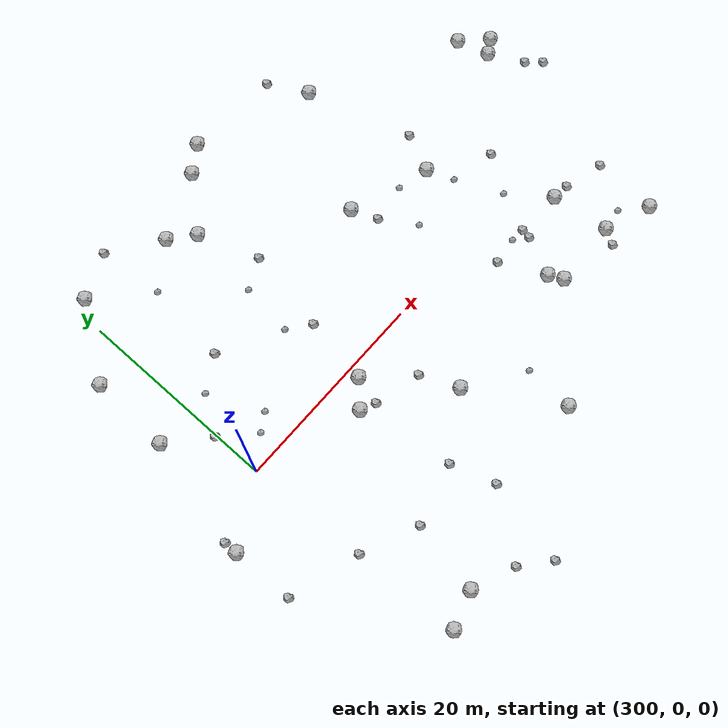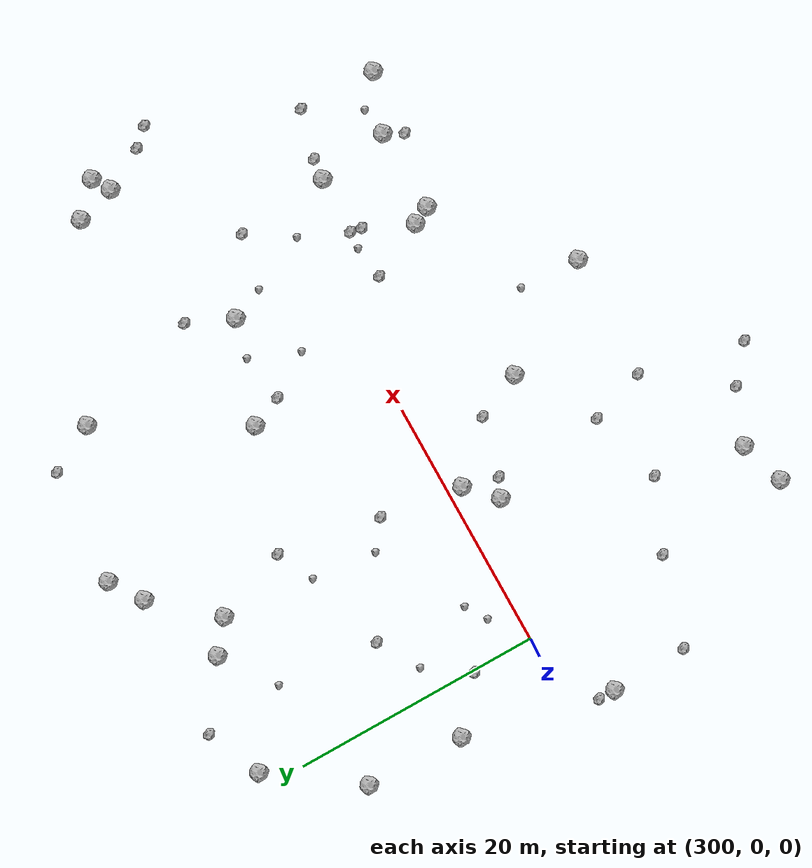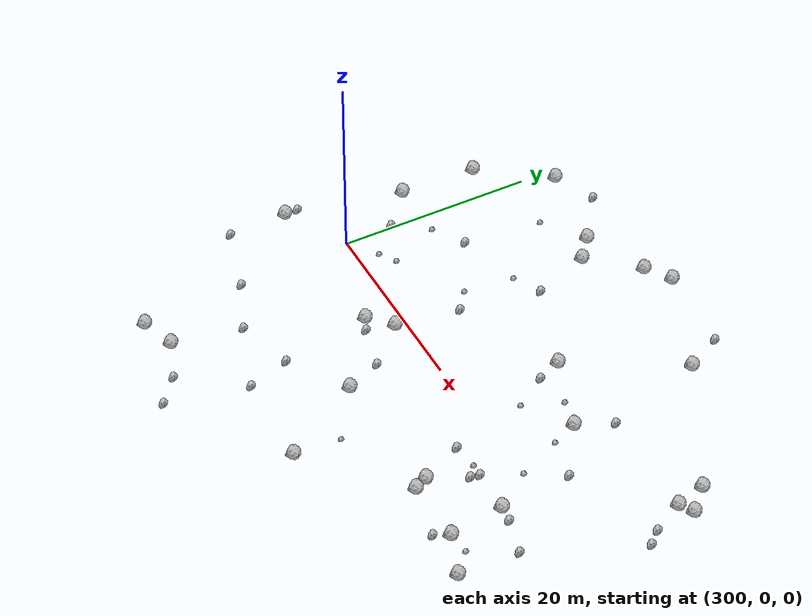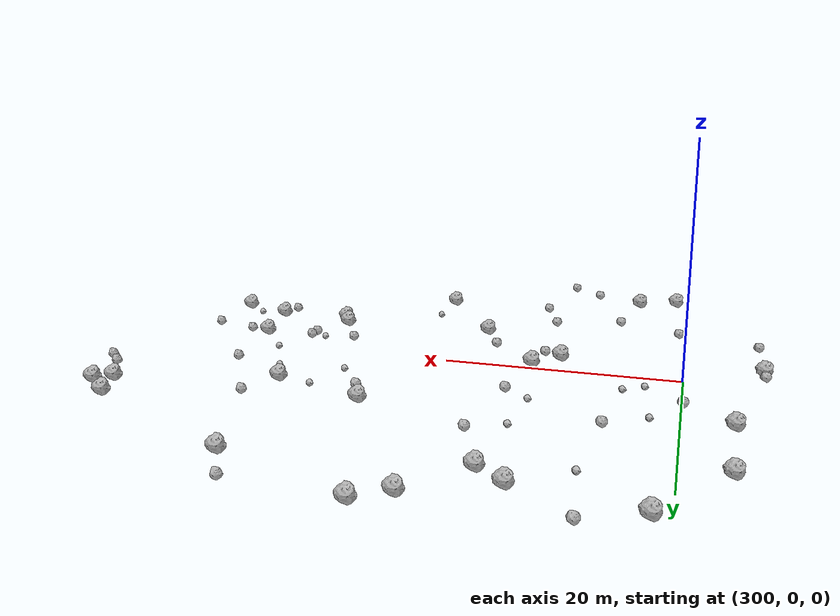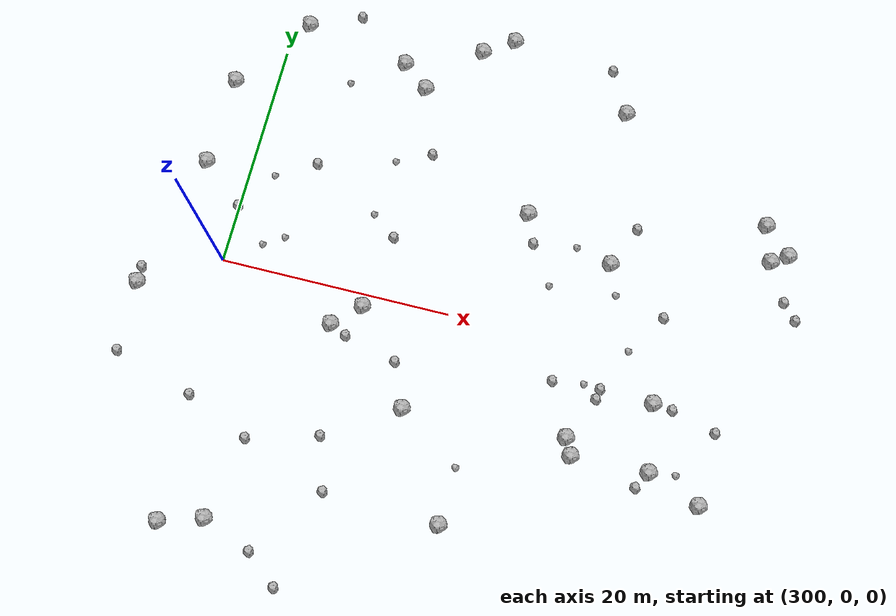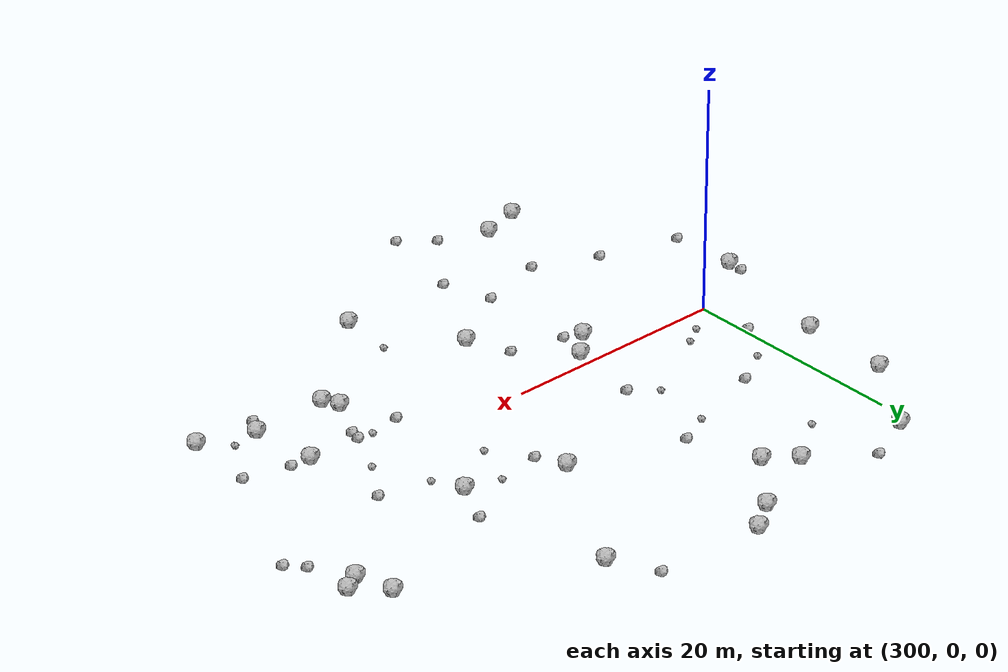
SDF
<sdf version="1.6">
 <world name="default">
  <include><uri>model://sun</uri></include>
  <model name="rock1_8_2">
   <include><uri>model://rock1</uri><pose>332.0401347075249 -7.902253272731997 0.5 0 0 0</pose></include>
  </model>
  <model name="rock1_8_3">
   <include><uri>model://rock1</uri><pose>293.50354653034685 -3.677165294599561 0.5 0 0 0</pose></include>
  </model>
  <model name="rock1_8_4">
   <include><uri>model://rock1</uri><pose>301.3482084741314 23.10975078184164 0.5 0 0 0</pose></include>
  </model>
  <model name="rock1_8_5">
   <include><uri>model://rock1</uri><pose>332.46688523404663 7.622393766580899 0.5 0 0 0</pose></include>
  </model>
  <model name="rock1_8_6">
   <include><uri>model://rock1</uri><pose>347.15121569268865 11.992820762034086 0.5 0 0 0</pose></include>
  </model>
  <model name="rock1_8_7">
   <include><uri>model://rock1</uri><pose>301.27994444704285 -22.603319472507923 0.5 0 0 0</pose></include>
  </model>
  <model name="rock1_8_8">
   <include><uri>model://rock1</uri><pose>324.5865611412634 10.34913425687423 0.5 0 0 0</pose></include>
  </model>
  <model name="rock1_8_9">
   <include><uri>model://rock1</uri><pose>344.84884280766613 14.250018480513774 0.5 0 0 0</pose></include>
  </model>
  <model name="rock1_8_10">
   <include><uri>model://rock1</uri><pose>343.7683002749192 -10.793255702076824 0.5 0 0 0</pose></include>
  </model>
  <model name="rock1_8_11">
   <include><uri>model://rock1</uri><pose>319.73247086119056 25.988199943187013 0.5 0 0 0</pose></include>
  </model>
  <model name="rock1_8_12">
   <include><uri>model://rock1</uri><pose>296.099062347749 8.292002591007822 0.5 0 0 0</pose></include>
  </model>
  <model name="rock1_8_13">
   <include><uri>model://rock1</uri><pose>338.47564021092955 -3.386059068467759 0.5 0 0 0</pose></include>
  </model>
  <model name="rock1_8_14">
   <include><uri>model://rock1</uri><pose>313.028866550914 19.589287522959737 0.5 0 0 0</pose></include>
  </model>
  <model name="rock1_8_15">
   <include><uri>model://rock1</uri><pose>345.7594227724196 11.131120552008184 0.5 0 0 0</pose></include>
  </model>
  <model name="rock1_8_16">
   <include><uri>model://rock1</uri><pose>323.5501079150378 -17.39093537866627 0.5 0 0 0</pose></include>
  </model>
  <model name="rock1_8_17">
   <include><uri>model://rock1</uri><pose>332.73656794681926 -9.293931193606404 0.5 0 0 0</pose></include>
  </model>
  <model name="rock1_8_18">
   <include><uri>model://rock1</uri><pose>317.1606621481965 24.276247834601726 0.5 0 0 0</pose></include>
  </model>
  <model name="rock1_8_19">
   <include><uri>model://rock1</uri><pose>310.67660597295355 21.499468643380595 0.5 0 0 0</pose></include>
  </model>
  <model name="rock1_8_20">
   <include><uri>model://rock1</uri><pose>312.7700531082266 -1.1339976960704483 0.5 0 0 0</pose></include>
  </model>
  <model name="rock1_8_21">
   <include><uri>model://rock1</uri><pose>296.38496412716535 16.240902372300603 0.5 0 0 0</pose></include>
  </model>
  <model name="rock1_8_22">
   <include><uri>model://rock1</uri><pose>304.90105467627853 -21.46232686799628 0.5 0 0 0</pose></include>
  </model>
  <model name="rock1_8_23">
   <include><uri>model://rock1</uri><pose>310.5519045626838 -3.278909486205265 0.5 0 0 0</pose></include>
  </model>
  <model name="rock1_8_24">
   <include><uri>model://rock1</uri><pose>330.9175856074095 21.540901044954836 0.5 0 0 0</pose></include>
  </model>
  <model name="rock1_8_25">
   <include><uri>model://rock1</uri><pose>339.2691493768007 -9.096740366912488 0.5 0 0 0</pose></include>
  </model>
  <model name="rock1_8_26">
   <include><uri>model://rock1</uri><pose>318.2476985312781 -8.831793862439199 0.5 0 0 0</pose></include>
  </model>
  <model name="rock2_8_0">
   <include><uri>model://rock2</uri><pose>309.1413138497845 -23.15900327178505 0.3 0 0 0</pose></include>
  </model>
  <model name="rock2_8_1">
   <include><uri>model://rock2</uri><pose>311.8735727274642 -25.42290646454908 0.3 0 0 0</pose></include>
  </model>
  <model name="rock2_8_2">
   <include><uri>model://rock2</uri><pose>329.8649938588119 -3.513586281112083 0.3 0 0 0</pose></include>
  </model>
  <model name="rock2_8_3">
   <include><uri>model://rock2</uri><pose>313.6468349816642 -17.075131335113767 0.3 0 0 0</pose></include>
  </model>
  <model name="rock2_8_4">
   <include><uri>model://rock2</uri><pose>312.212055903995 -12.677040596772638 0.3 0 0 0</pose></include>
  </model>
  <model name="rock2_8_5">
   <include><uri>model://rock2</uri><pose>340.1325190007451 -3.5424388398539506 0.3 0 0 0</pose></include>
  </model>
  <model name="rock2_8_6">
   <include><uri>model://rock2</uri><pose>293.42983136666277 -2.289463054231387 0.3 0 0 0</pose></include>
  </model>
  <model name="rock2_8_7">
   <include><uri>model://rock2</uri><pose>316.6299919149153 -5.123689199961817 0.3 0 0 0</pose></include>
  </model>
  <model name="rock2_8_8">
   <include><uri>model://rock2</uri><pose>306.2140636859549 -14.363550253043613 0.3 0 0 0</pose></include>
  </model>
  <model name="rock2_8_9">
   <include><uri>model://rock2</uri><pose>293.63256697167145 -9.815710982043505 0.3 0 0 0</pose></include>
  </model>
  <model name="rock2_8_10">
   <include><uri>model://rock2</uri><pose>347.5064101895973 7.864719392765352 0.3 0 0 0</pose></include>
  </model>
  <model name="rock2_8_11">
   <include><uri>model://rock2</uri><pose>338.45127929399166 -10.570075231293078 0.3 0 0 0</pose></include>
  </model>
  <model name="rock2_8_12">
   <include><uri>model://rock2</uri><pose>299.8802758371775 5.019934547867813 0.3 0 0 0</pose></include>
  </model>
  <model name="rock2_8_13">
   <include><uri>model://rock2</uri><pose>305.7235454981227 25.02062330006209 0.3 0 0 0</pose></include>
  </model>
  <model name="rock2_8_14">
   <include><uri>model://rock2</uri><pose>315.1478128616793 13.688134701477658 0.3 0 0 0</pose></include>
  </model>
  <model name="rock2_8_15">
   <include><uri>model://rock2</uri><pose>333.909283879502 -3.2264580435528636 0.3 0 0 0</pose></include>
  </model>
  <model name="rock2_8_16">
   <include><uri>model://rock2</uri><pose>305.55990205153995 10.409589187835593 0.3 0 0 0</pose></include>
  </model>
  <model name="rock2_8_17">
   <include><uri>model://rock2</uri><pose>333.7476150821548 -4.155366972737379 0.3 0 0 0</pose></include>
  </model>
  <model name="rock2_8_18">
   <include><uri>model://rock2</uri><pose>348.7263579093962 6.511246272169231 0.3 0 0 0</pose></include>
  </model>
  <model name="rock2_8_19">
   <include><uri>model://rock2</uri><pose>311.997317577705 -3.941355657872286 0.3 0 0 0</pose></include>
  </model>
  <model name="rock2_8_20">
   <include><uri>model://rock2</uri><pose>334.05794575966837 11.259615231372756 0.3 0 0 0</pose></include>
  </model>
  <model name="rock2_8_21">
   <include><uri>model://rock2</uri><pose>325.593516148458 7.849277005157596 0.3 0 0 0</pose></include>
  </model>
  <model name="rock2_8_22">
   <include><uri>model://rock2</uri><pose>328.88247441346095 25.333103442696952 0.3 0 0 0</pose></include>
  </model>
  <model name="rock2_8_23">
   <include><uri>model://rock2</uri><pose>343.96346701595576 -4.579596268074113 0.3 0 0 0</pose></include>
  </model>
  <model name="rock2_8_24">
   <include><uri>model://rock2</uri><pose>337.84456474476633 4.055896517225648 0.3 0 0 0</pose></include>
  </model>
  <model name="rock2_8_25">
   <include><uri>model://rock2</uri><pose>313.76366303256054 5.450867881559574 0.3 0 0 0</pose></include>
  </model>
  <model name="rock2_8_26">
   <include><uri>model://rock2</uri><pose>300.66300108906904 -11.956821309702569 0.3 0 0 0</pose></include>
  </model>
  <model name="rock3_8_0">
   <include><uri>model://rock3</uri><pose>304.61948257416066 3.1837170531075216 0.2 0 0 0</pose></include>
  </model>
  <model name="rock3_8_1">
   <include><uri>model://rock3</uri><pose>341.4847565744558 -8.808582078465857 0.2 0 0 0</pose></include>
  </model>
  <model name="rock3_8_2">
   <include><uri>model://rock3</uri><pose>302.2048087789598 8.440787042223356 0.2 0 0 0</pose></include>
  </model>
  <model name="rock3_8_3">
   <include><uri>model://rock3</uri><pose>333.4785503643014 5.002062739002987 0.2 0 0 0</pose></include>
  </model>
  <model name="rock3_8_4">
   <include><uri>model://rock3</uri><pose>306.34545138622826 18.519863071659742 0.2 0 0 0</pose></include>
  </model>
  <model name="rock3_8_5">
   <include><uri>model://rock3</uri><pose>323.7486653727441 -12.551404021646295 0.2 0 0 0</pose></include>
  </model>
  <model name="rock3_8_6">
   <include><uri>model://rock3</uri><pose>332.4967746126689 -3.161831737420222 0.2 0 0 0</pose></include>
  </model>
  <model name="rock3_8_7">
   <include><uri>model://rock3</uri><pose>327.7553179391415 4.4694609031881924 0.2 0 0 0</pose></include>
  </model>
  <model name="rock3_8_8">
   <include><uri>model://rock3</uri><pose>302.9159206324668 2.1128969727792537 0.2 0 0 0</pose></include>
  </model>
  <model name="rock3_8_9">
   <include><uri>model://rock3</uri><pose>329.33196911408606 8.383440972852434 0.2 0 0 0</pose></include>
  </model>
  <model name="rock3_8_10">
   <include><uri>model://rock3</uri><pose>312.1774979882452 12.262904020296808 0.2 0 0 0</pose></include>
  </model>
  <model name="rock3_8_11">
   <include><uri>model://rock3</uri><pose>335.5482814492592 0.4929435560473543 0.2 0 0 0</pose></include>
  </model>
  <model name="rock3_8_12">
   <include><uri>model://rock3</uri><pose>311.5929771185996 7.081808165326748 0.2 0 0 0</pose></include>
  </model>
 </world>
</sdf>
